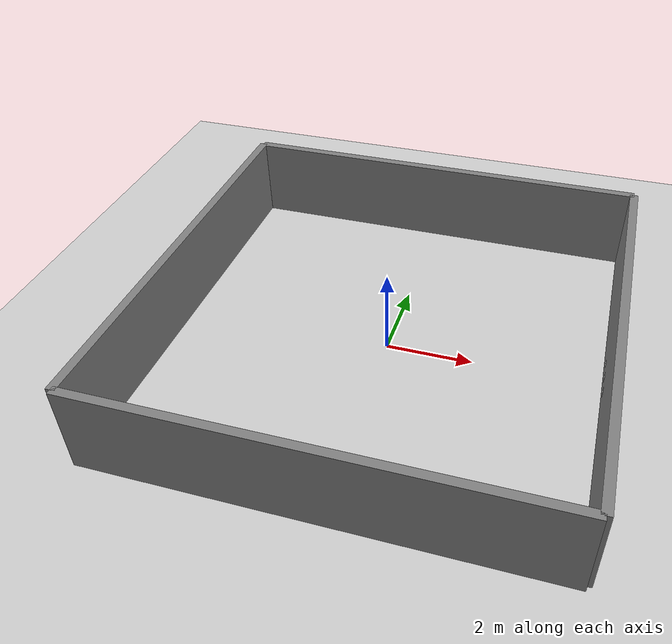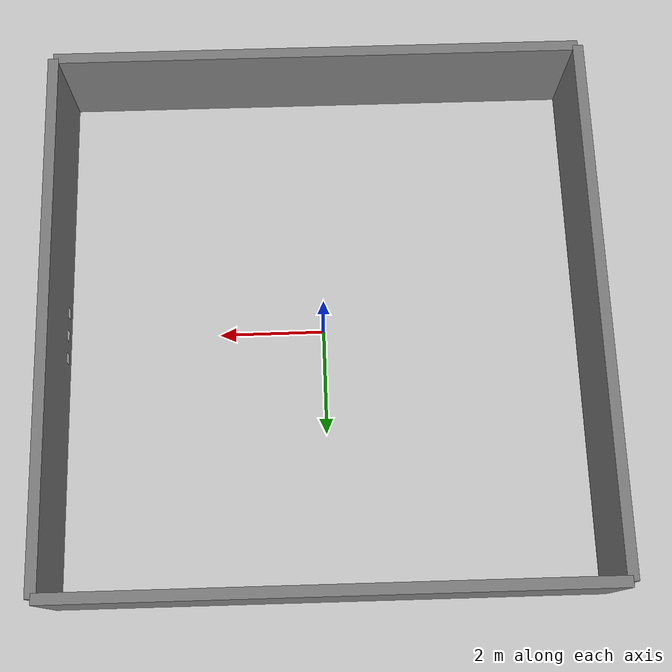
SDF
<?xml version="1.0"?>
<sdf version="1.6">
  <world name="walled_world">
    <physics name="1ms" type="ignored">
      <max_step_size>0.001</max_step_size>
      <real_time_factor>1.0</real_time_factor>
    </physics>
    <plugin
      filename="gz-sim-physics-system"
      name="gz::sim::systems::Physics">
    </plugin>
    <plugin
      filename="gz-sim-user-commands-system"
      name="gz::sim::systems::UserCommands">
    </plugin>
    <plugin
      filename="gz-sim-scene-broadcaster-system"
      name="gz::sim::systems::SceneBroadcaster">
    </plugin>
    <plugin
      filename="gz-sim-sensors-system"
      name="gz::sim::systems::Sensors">
      <render_engine>ogre2</render_engine>
    </plugin>

    <light type="directional" name="sun">
      <cast_shadows>true</cast_shadows>
      <pose>0 0 10 0 0 0</pose>
      <diffuse>0.8 0.8 0.8 1</diffuse>
      <specular>0.2 0.2 0.2 1</specular>
      <attenuation>
        <range>1000</range>
        <constant>0.9</constant>
        <linear>0.01</linear>
        <quadratic>0.001</quadratic>
      </attenuation>
      <direction>-0.5 0.1 -0.9</direction>
    </light>

    <model name="ground_plane">
      <static>true</static>
      <link name="link">
        <collision name="collision">
          <geometry>
            <plane>
              <normal>0 0 1</normal>
              <size>20 20</size>
            </plane>
          </geometry>
        </collision>
        <visual name="visual">
          <geometry>
            <plane>
              <normal>0 0 1</normal>
              <size>20 20</size>
            </plane>
          </geometry>
          <material>
            <ambient>0.8 0.8 0.8 1</ambient>
            <diffuse>0.8 0.8 0.8 1</diffuse>
            <specular>0.8 0.8 0.8 1</specular>
          </material>
        </visual>
      </link>
    </model>

    <!-- Wall 1 -->
    <model name="wall_1">
      <static>true</static>
      <pose>5 0 1 0 0 0</pose>
      <link name="link">
        <collision name="collision">
          <geometry>
            <box>
              <size>0.2 10 2</size>
            </box>
          </geometry>
        </collision>
        <visual name="visual">
          <geometry>
            <box>
              <size>0.2 10 2</size>
            </box>
          </geometry>
          <material>
            <ambient>0.5 0.5 0.5 1</ambient>
            <diffuse>0.5 0.5 0.5 1</diffuse>
          </material>
        </visual>
      </link>
    </model>

    <!-- Wall 2 -->
    <model name="wall_2">
      <static>true</static>
      <pose>-5 0 1 0 0 0</pose>
      <link name="link">
        <collision name="collision">
          <geometry>
            <box>
              <size>0.2 10 2</size>
            </box>
          </geometry>
        </collision>
        <visual name="visual">
          <geometry>
            <box>
              <size>0.2 10 2</size>
            </box>
          </geometry>
          <material>
            <ambient>0.5 0.5 0.5 1</ambient>
            <diffuse>0.5 0.5 0.5 1</diffuse>
          </material>
        </visual>
      </link>
    </model>

    <!-- Wall 3 -->
    <model name="wall_3">
      <static>true</static>
      <pose>0 5 1 0 0 0</pose>
      <link name="link">
        <collision name="collision">
          <geometry>
            <box>
              <size>10 0.2 2</size>
            </box>
          </geometry>
        </collision>
        <visual name="visual">
          <geometry>
            <box>
              <size>10 0.2 2</size>
            </box>
          </geometry>
          <material>
            <ambient>0.5 0.5 0.5 1</ambient>
            <diffuse>0.5 0.5 0.5 1</diffuse>
          </material>
        </visual>
      </link>
    </model>

    <!-- Wall 4 -->
    <model name="wall_4">
      <static>true</static>
      <pose>0 -5 1 0 0 0</pose>
      <link name="link">
        <collision name="collision">
          <geometry>
            <box>
              <size>10 0.2 2</size>
            </box>
          </geometry>
        </collision>
        <visual name="visual">
          <geometry>
            <box>
              <size>10 0.2 2</size>
            </box>
          </geometry>
          <material>
            <ambient>0.5 0.5 0.5 1</ambient>
            <diffuse>0.5 0.5 0.5 1</diffuse>
          </material>
        </visual>
      </link>
    </model>

    <include>
      <uri>model://apriltag_dock</uri>
      <name>apriltag_dock</name>
      <pose>4.899 0 0.3 0 0 3.14159</pose>
    </include>

  </world>
</sdf>

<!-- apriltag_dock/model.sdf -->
<sdf version="1.9">
  <model name="apriltag_dock">
    <static>true</static>
    <link name="link">
      <visual name="visual_tag0">
        <pose>0 -0.45 0 0 0 0</pose>
        <cast_shadows>false</cast_shadows>
        <geometry>
          <box>
            <size>0.001 0.20 0.20</size>
          </box>
        </geometry>
        <material>
          <ambient>1 1 1 1</ambient>
          <diffuse>1 1 1 1</diffuse>
          <specular>0 0 0 0</specular>
          <pbr>
            <metal>
              <albedo_map>model://apriltag_dock/materials/textures/apriltag_36h11_id0.png</albedo_map>
              <metalness>0.0</metalness>
              <roughness>1.0</roughness>
            </metal>
          </pbr>
        </material>
      </visual>
      <visual name="visual_tag1">
        <pose>0 0 0 0 0 0</pose>
        <cast_shadows>false</cast_shadows>
        <geometry>
          <box>
            <size>0.001 0.20 0.20</size>
          </box>
        </geometry>
        <material>
          <ambient>1 1 1 1</ambient>
          <diffuse>1 1 1 1</diffuse>
          <specular>0 0 0 0</specular>
          <pbr>
            <metal>
              <albedo_map>model://apriltag_dock/materials/textures/apriltag_36h11_id1.png</albedo_map>
              <metalness>0.0</metalness>
              <roughness>1.0</roughness>
            </metal>
          </pbr>
        </material>
      </visual>
      <visual name="visual_tag2">
        <pose>0 0.45 0 0 0 0</pose>
        <cast_shadows>false</cast_shadows>
        <geometry>
          <box>
            <size>0.001 0.20 0.20</size>
          </box>
        </geometry>
        <material>
          <ambient>1 1 1 1</ambient>
          <diffuse>1 1 1 1</diffuse>
          <specular>0 0 0 0</specular>
          <pbr>
            <metal>
              <albedo_map>model://apriltag_dock/materials/textures/apriltag_36h11_id2.png</albedo_map>
              <metalness>0.0</metalness>
              <roughness>1.0</roughness>
            </metal>
          </pbr>
        </material>
      </visual>
      <collision name="collision">
        <geometry>
          <box>
            <size>0.001 1.10 0.20</size>
          </box>
        </geometry>
      </collision>
    </link>
  </model>
</sdf>
